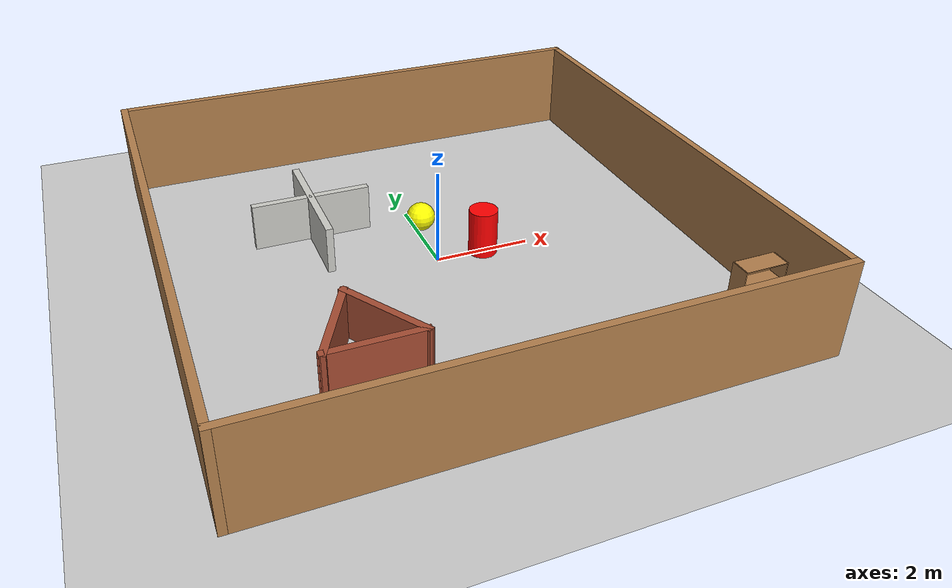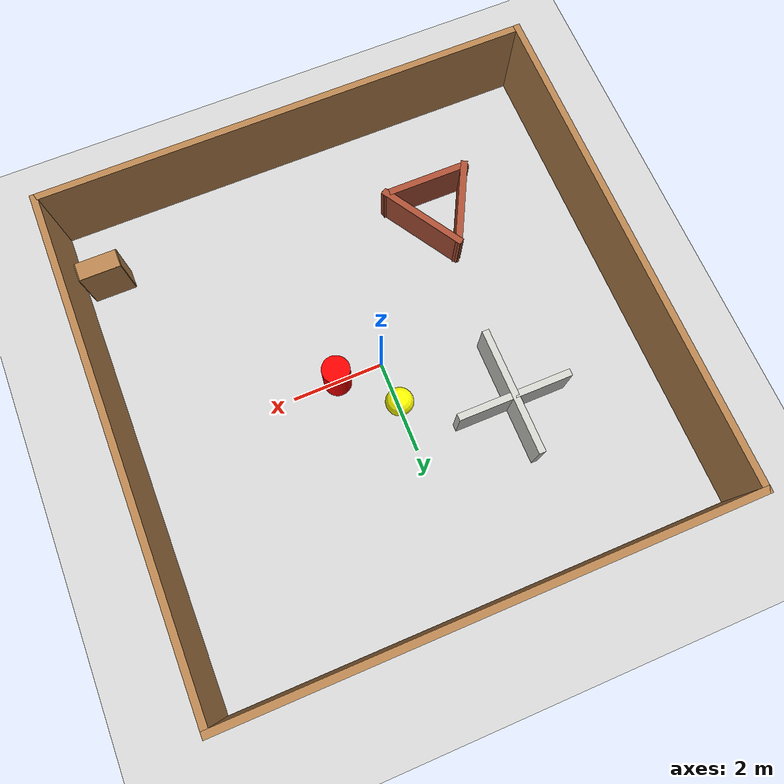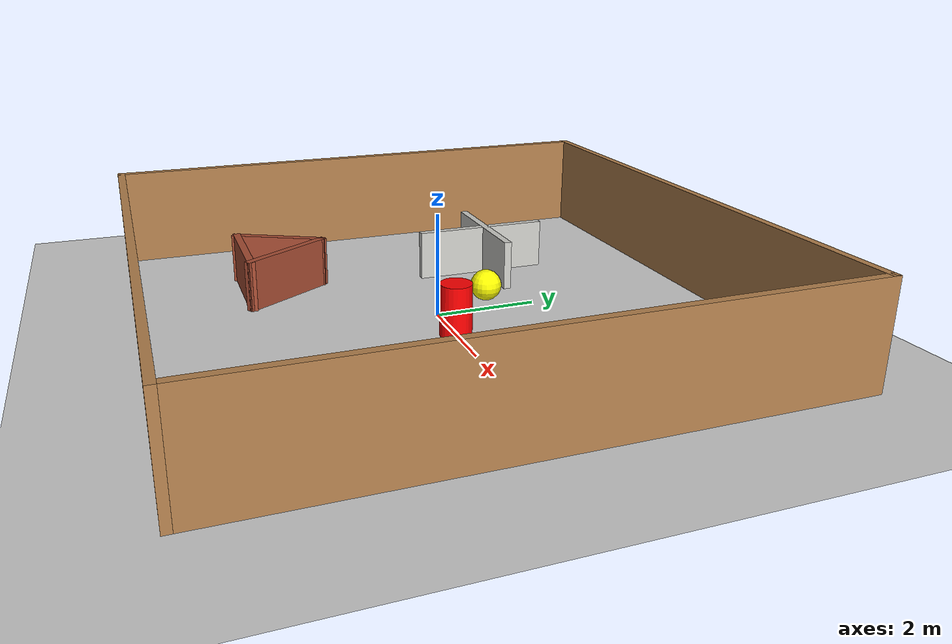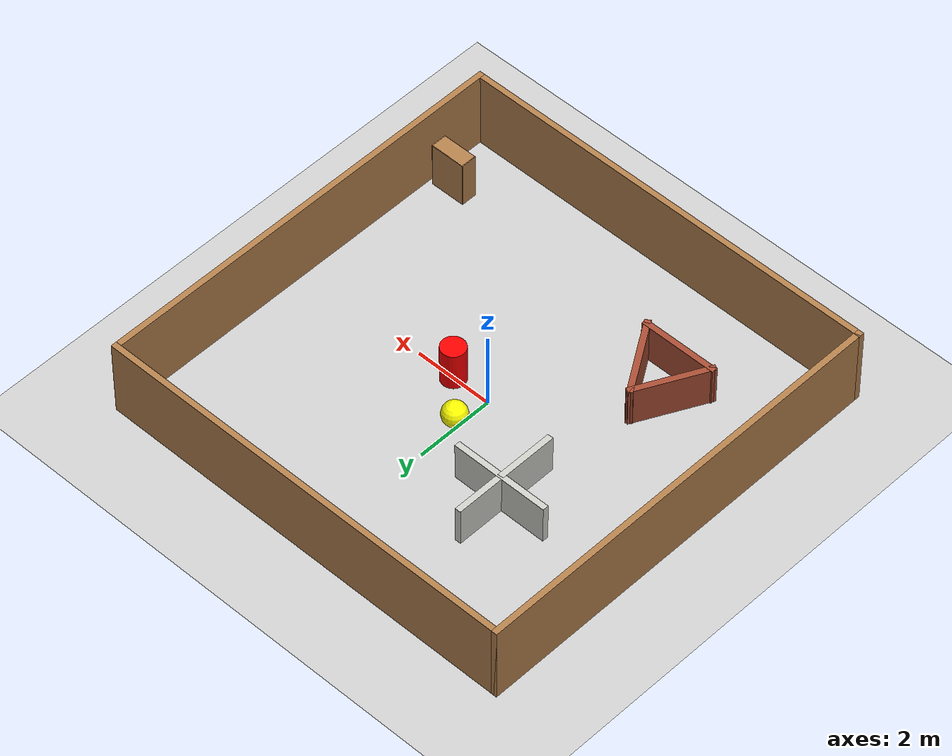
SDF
<sdf version="1.6">
 <world name="default">
  <model name="circular_obstacle">
   <pose>1 0 0.5 0 0 0</pose>
   <static>false</static>
   <link name="link">
    <collision name="collision">
     <geometry><cylinder><radius>0.3</radius><length>1.0</length></cylinder></geometry>
     <surface>
      <contact><ode><min_depth>0.001</min_depth><max_vel>0.1</max_vel><kp>1e5</kp><kd>1</kd></ode></contact>
      <friction><ode><mu>1.0</mu><mu2>1.0</mu2></ode></friction>
      <bounce><restitution_coefficient>0</restitution_coefficient><threshold>1e6</threshold></bounce>
     </surface>
    </collision>
    <visual name="visual">
     <geometry><cylinder><radius>0.3</radius><length>1.0</length></cylinder></geometry>
     <material><ambient>1 0 0 1</ambient><diffuse>1 0 0 1</diffuse></material>
    </visual>
    <inertial>
     <mass>5.0</mass>
     <inertia>
      <ixx>0.729166667</ixx>
      <ixy>0</ixy>
      <ixz>0</ixz>
      <iyy>0.729166667</iyy>
      <iyz>0</iyz>
      <izz>0.225</izz>
     </inertia>
    </inertial>
   </link>
   <plugin name="obstacle_motion" filename="libdynamic_obstacle_plugin.so"/>
  </model>
  <model name="eight_shaped_obstacle">
   <pose>0 1 0.5 0 0 0</pose>
   <static>false</static>
   <link name="link">
    <collision name="collision">
     <geometry><sphere><radius>0.3</radius></sphere></geometry>
     <surface>
      <contact><ode><min_depth>0.001</min_depth><max_vel>0.1</max_vel><kp>1e5</kp><kd>1</kd></ode></contact>
      <friction><ode><mu>1.0</mu><mu2>1.0</mu2></ode></friction>
      <bounce><restitution_coefficient>0</restitution_coefficient><threshold>1e6</threshold></bounce>
     </surface>
    </collision>
    <visual name="visual">
     <geometry><sphere><radius>0.3</radius></sphere></geometry>
     <material><ambient>1 1 0 1</ambient><diffuse>1 1 0 1</diffuse></material>
    </visual>
    <inertial>
     <mass>5.0</mass>
     <inertia><ixx>0.18</ixx><ixy>0</ixy><ixz>0</ixz><iyy>0.18</iyy><iyz>0</iyz><izz>0.18</izz></inertia>
    </inertial>
   </link>
   <plugin name="obstacle_motion" filename="libdynamic_obstacle_plugin.so"/>
  </model>
  <model name="ground_plane">
   <static>1</static>
   <link name="link">
    <collision name="collision">
     <geometry><plane><normal>0 0 1</normal><size>100 100</size></plane></geometry>
     <surface>
      <friction><ode><mu>100</mu><mu2>50</mu2></ode></friction>
      <contact><kp>1e6</kp><kd>100</kd></contact>
     </surface>
    </collision>
    <visual name="visual">
     <cast_shadows>0</cast_shadows>
     <geometry><plane><normal>0 0 1</normal><size>100 100</size></plane></geometry>
     <material>
      <script><uri>file://media/materials/scripts/gazebo.material</uri><name>Gazebo/Grey</name></script>
     </material>
    </visual>
   </link>
  </model>
  <model name="box">
   <link name="Wall_11">
    <pose>-2.152 1.857 0 0 -0 0</pose>
    <visual name="Wall_11_Visual">
     <pose>0 0 0.5 0 -0 0</pose>
     <geometry><box><size>2.5 0.15 1</size></box></geometry>
     <material>
      <script><uri>file://media/materials/scripts/gazebo.material</uri><name>Gazebo/CeilingTiled</name></script>
      <ambient>1 1 1 1</ambient>
      <diffuse>1 1 1 1</diffuse>
      <specular>0 0 0 1</specular>
      <emissive>0 0 0 1</emissive>
     </material>
     <meta><layer>0</layer></meta>
    </visual>
    <collision name="Wall_11_Collision">
     <pose>0 0 0.5 0 -0 0</pose>
     <geometry><box><size>2.5 0.15 1</size></box></geometry>
     <surface>
      <friction>
       <ode><mu>1</mu><mu2>1</mu2><fdir1>0 0 0</fdir1><slip1>0</slip1><slip2>0</slip2></ode>
       <torsional>
        <coefficient>1</coefficient>
        <patch_radius>0</patch_radius>
        <surface_radius>0</surface_radius>
        <use_patch_radius>1</use_patch_radius>
        <ode><slip>0</slip></ode>
       </torsional>
      </friction>
      <bounce><restitution_coefficient>0</restitution_coefficient><threshold>1e+06</threshold></bounce>
      <contact>
       <collide_without_contact>0</collide_without_contact>
       <collide_without_contact_bitmask>1</collide_without_contact_bitmask>
       <collide_bitmask>1</collide_bitmask>
       <ode>
        <soft_cfm>0</soft_cfm>
        <soft_erp>0.2</soft_erp>
        <kp>1e+13</kp>
        <kd>1</kd>
        <max_vel>0.01</max_vel>
        <min_depth>0</min_depth>
       </ode>
       <bullet>
        <split_impulse>1</split_impulse>
        <split_impulse_penetration_threshold>-0.01</split_impulse_penetration_threshold>
        <soft_cfm>0</soft_cfm>
        <soft_erp>0.2</soft_erp>
        <kp>1e+13</kp>
        <kd>1</kd>
       </bullet>
      </contact>
     </surface>
    </collision>
   </link>
   <link name="Wall_13">
    <pose>-2.155 1.764 0 0 0 -1.5708</pose>
    <visual name="Wall_13_Visual">
     <pose>0 0 0.5 0 -0 0</pose>
     <geometry><box><size>2.75 0.15 1</size></box></geometry>
     <material>
      <script><uri>file://media/materials/scripts/gazebo.material</uri><name>Gazebo/CeilingTiled</name></script>
      <ambient>1 1 1 1</ambient>
      <diffuse>1 1 1 1</diffuse>
      <specular>0 0 0 1</specular>
      <emissive>0 0 0 1</emissive>
     </material>
     <meta><layer>0</layer></meta>
    </visual>
    <collision name="Wall_13_Collision">
     <pose>0 0 0.5 0 -0 0</pose>
     <geometry><box><size>2.75 0.15 1</size></box></geometry>
     <surface>
      <friction>
       <ode><mu>1</mu><mu2>1</mu2><fdir1>0 0 0</fdir1><slip1>0</slip1><slip2>0</slip2></ode>
       <torsional>
        <coefficient>1</coefficient>
        <patch_radius>0</patch_radius>
        <surface_radius>0</surface_radius>
        <use_patch_radius>1</use_patch_radius>
        <ode><slip>0</slip></ode>
       </torsional>
      </friction>
      <bounce><restitution_coefficient>0</restitution_coefficient><threshold>1e+06</threshold></bounce>
      <contact>
       <collide_without_contact>0</collide_without_contact>
       <collide_without_contact_bitmask>1</collide_without_contact_bitmask>
       <collide_bitmask>1</collide_bitmask>
       <ode>
        <soft_cfm>0</soft_cfm>
        <soft_erp>0.2</soft_erp>
        <kp>1e+13</kp>
        <kd>1</kd>
        <max_vel>0.01</max_vel>
        <min_depth>0</min_depth>
       </ode>
       <bullet>
        <split_impulse>1</split_impulse>
        <split_impulse_penetration_threshold>-0.01</split_impulse_penetration_threshold>
        <soft_cfm>0</soft_cfm>
        <soft_erp>0.2</soft_erp>
        <kp>1e+13</kp>
        <kd>1</kd>
       </bullet>
      </contact>
     </surface>
    </collision>
   </link>
   <link name="Wall_24">
    <pose>-2.89576 -2.49088 0 0 -0 1.09459</pose>
    <visual name="Wall_24_Visual">
     <pose>0 0 0.5 0 -0 0</pose>
     <geometry><box><size>1.97704 0.15 1</size></box></geometry>
     <material>
      <script><uri>file://media/materials/scripts/gazebo.material</uri><name>Gazebo/Bricks</name></script>
      <ambient>1 1 1 1</ambient>
      <diffuse>1 1 1 1</diffuse>
      <specular>0.2 0.2 0.2 1</specular>
      <emissive>0 0 0 1</emissive>
     </material>
     <meta><layer>0</layer></meta>
    </visual>
    <collision name="Wall_24_Collision">
     <pose>0 0 0.5 0 -0 0</pose>
     <geometry><box><size>1.97704 0.15 1</size></box></geometry>
     <surface>
      <friction>
       <ode><mu>1</mu><mu2>1</mu2><fdir1>0 0 0</fdir1><slip1>0</slip1><slip2>0</slip2></ode>
       <torsional>
        <coefficient>1</coefficient>
        <patch_radius>0</patch_radius>
        <surface_radius>0</surface_radius>
        <use_patch_radius>1</use_patch_radius>
        <ode><slip>0</slip></ode>
       </torsional>
      </friction>
      <bounce><restitution_coefficient>0</restitution_coefficient><threshold>1e+06</threshold></bounce>
      <contact>
       <collide_without_contact>0</collide_without_contact>
       <collide_without_contact_bitmask>1</collide_without_contact_bitmask>
       <collide_bitmask>1</collide_bitmask>
       <ode>
        <soft_cfm>0</soft_cfm>
        <soft_erp>0.2</soft_erp>
        <kp>1e+13</kp>
        <kd>1</kd>
        <max_vel>0.01</max_vel>
        <min_depth>0</min_depth>
       </ode>
       <bullet>
        <split_impulse>1</split_impulse>
        <split_impulse_penetration_threshold>-0.01</split_impulse_penetration_threshold>
        <soft_cfm>0</soft_cfm>
        <soft_erp>0.2</soft_erp>
        <kp>1e+13</kp>
        <kd>1</kd>
       </bullet>
      </contact>
     </surface>
    </collision>
   </link>
   <link name="Wall_25">
    <pose>-1.97077 -2.49088 0 0 0 -1.01325</pose>
    <visual name="Wall_25_Visual">
     <pose>0 0 0.5 0 -0 0</pose>
     <geometry><box><size>2.06356 0.15 1</size></box></geometry>
     <material>
      <script><uri>file://media/materials/scripts/gazebo.material</uri><name>Gazebo/Bricks</name></script>
      <ambient>1 1 1 1</ambient>
      <diffuse>1 1 1 1</diffuse>
      <specular>0.2 0.2 0.2 1</specular>
      <emissive>0 0 0 1</emissive>
     </material>
     <meta><layer>0</layer></meta>
    </visual>
    <collision name="Wall_25_Collision">
     <pose>0 0 0.5 0 -0 0</pose>
     <geometry><box><size>2.06356 0.15 1</size></box></geometry>
     <surface>
      <friction>
       <ode><mu>1</mu><mu2>1</mu2><fdir1>0 0 0</fdir1><slip1>0</slip1><slip2>0</slip2></ode>
       <torsional>
        <coefficient>1</coefficient>
        <patch_radius>0</patch_radius>
        <surface_radius>0</surface_radius>
        <use_patch_radius>1</use_patch_radius>
        <ode><slip>0</slip></ode>
       </torsional>
      </friction>
      <bounce><restitution_coefficient>0</restitution_coefficient><threshold>1e+06</threshold></bounce>
      <contact>
       <collide_without_contact>0</collide_without_contact>
       <collide_without_contact_bitmask>1</collide_without_contact_bitmask>
       <collide_bitmask>1</collide_bitmask>
       <ode>
        <soft_cfm>0</soft_cfm>
        <soft_erp>0.2</soft_erp>
        <kp>1e+13</kp>
        <kd>1</kd>
        <max_vel>0.01</max_vel>
        <min_depth>0</min_depth>
       </ode>
       <bullet>
        <split_impulse>1</split_impulse>
        <split_impulse_penetration_threshold>-0.01</split_impulse_penetration_threshold>
        <soft_cfm>0</soft_cfm>
        <soft_erp>0.2</soft_erp>
        <kp>1e+13</kp>
        <kd>1</kd>
       </bullet>
      </contact>
     </surface>
    </collision>
   </link>
   <link name="Wall_26">
    <pose>-2.38953 -3.28527 0 0 -0 3.14159</pose>
    <visual name="Wall_26_Visual">
     <pose>0 0 0.5 0 -0 0</pose>
     <geometry><box><size>2 0.15 1</size></box></geometry>
     <material>
      <script><uri>file://media/materials/scripts/gazebo.material</uri><name>Gazebo/Bricks</name></script>
      <ambient>1 1 1 1</ambient>
      <diffuse>1 1 1 1</diffuse>
      <specular>0.2 0.2 0.2 1</specular>
      <emissive>0 0 0 1</emissive>
     </material>
     <meta><layer>0</layer></meta>
    </visual>
    <collision name="Wall_26_Collision">
     <pose>0 0 0.5 0 -0 0</pose>
     <geometry><box><size>2 0.15 1</size></box></geometry>
     <surface>
      <friction>
       <ode><mu>1</mu><mu2>1</mu2><fdir1>0 0 0</fdir1><slip1>0</slip1><slip2>0</slip2></ode>
       <torsional>
        <coefficient>1</coefficient>
        <patch_radius>0</patch_radius>
        <surface_radius>0</surface_radius>
        <use_patch_radius>1</use_patch_radius>
        <ode><slip>0</slip></ode>
       </torsional>
      </friction>
      <bounce><restitution_coefficient>0</restitution_coefficient><threshold>1e+06</threshold></bounce>
      <contact>
       <collide_without_contact>0</collide_without_contact>
       <collide_without_contact_bitmask>1</collide_without_contact_bitmask>
       <collide_bitmask>1</collide_bitmask>
       <ode>
        <soft_cfm>0</soft_cfm>
        <soft_erp>0.2</soft_erp>
        <kp>1e+13</kp>
        <kd>1</kd>
        <max_vel>0.01</max_vel>
        <min_depth>0</min_depth>
       </ode>
       <bullet>
        <split_impulse>1</split_impulse>
        <split_impulse_penetration_threshold>-0.01</split_impulse_penetration_threshold>
        <soft_cfm>0</soft_cfm>
        <soft_erp>0.2</soft_erp>
        <kp>1e+13</kp>
        <kd>1</kd>
       </bullet>
      </contact>
     </surface>
    </collision>
   </link>
   <link name="Wall_6">
    <pose>0 5.425 0 0 -0 0</pose>
    <visual name="Wall_6_Visual">
     <pose>0 0 1 0 -0 0</pose>
     <geometry><box><size>11 0.15 2</size></box></geometry>
     <material>
      <script><uri>file://media/materials/scripts/gazebo.material</uri><name>Gazebo/Wood</name></script>
      <ambient>1 1 1 1</ambient>
      <diffuse>1 1 1 1</diffuse>
      <specular>0.2 0.2 0.2 1</specular>
      <emissive>0 0 0 1</emissive>
     </material>
     <meta><layer>0</layer></meta>
    </visual>
    <collision name="Wall_6_Collision">
     <pose>0 0 1 0 -0 0</pose>
     <geometry><box><size>11 0.15 2</size></box></geometry>
     <surface>
      <friction>
       <ode><mu>1</mu><mu2>1</mu2><fdir1>0 0 0</fdir1><slip1>0</slip1><slip2>0</slip2></ode>
       <torsional>
        <coefficient>1</coefficient>
        <patch_radius>0</patch_radius>
        <surface_radius>0</surface_radius>
        <use_patch_radius>1</use_patch_radius>
        <ode><slip>0</slip></ode>
       </torsional>
      </friction>
      <bounce><restitution_coefficient>0</restitution_coefficient><threshold>1e+06</threshold></bounce>
      <contact>
       <collide_without_contact>0</collide_without_contact>
       <collide_without_contact_bitmask>1</collide_without_contact_bitmask>
       <collide_bitmask>1</collide_bitmask>
       <ode>
        <soft_cfm>0</soft_cfm>
        <soft_erp>0.2</soft_erp>
        <kp>1e+13</kp>
        <kd>1</kd>
        <max_vel>0.01</max_vel>
        <min_depth>0</min_depth>
       </ode>
       <bullet>
        <split_impulse>1</split_impulse>
        <split_impulse_penetration_threshold>-0.01</split_impulse_penetration_threshold>
        <soft_cfm>0</soft_cfm>
        <soft_erp>0.2</soft_erp>
        <kp>1e+13</kp>
        <kd>1</kd>
       </bullet>
      </contact>
     </surface>
    </collision>
   </link>
   <link name="Wall_7">
    <pose>5.425 0 0 0 0 -1.5708</pose>
    <visual name="Wall_7_Visual">
     <pose>0 0 1 0 -0 0</pose>
     <geometry><box><size>11 0.15 2</size></box></geometry>
     <material>
      <script><uri>file://media/materials/scripts/gazebo.material</uri><name>Gazebo/Wood</name></script>
      <ambient>1 1 1 1</ambient>
      <diffuse>1 1 1 1</diffuse>
      <specular>0.2 0.2 0.2 1</specular>
      <emissive>0 0 0 1</emissive>
     </material>
     <meta><layer>0</layer></meta>
    </visual>
    <collision name="Wall_7_Collision">
     <pose>0 0 1 0 -0 0</pose>
     <geometry><box><size>11 0.15 2</size></box></geometry>
     <surface>
      <friction>
       <ode><mu>1</mu><mu2>1</mu2><fdir1>0 0 0</fdir1><slip1>0</slip1><slip2>0</slip2></ode>
       <torsional>
        <coefficient>1</coefficient>
        <patch_radius>0</patch_radius>
        <surface_radius>0</surface_radius>
        <use_patch_radius>1</use_patch_radius>
        <ode><slip>0</slip></ode>
       </torsional>
      </friction>
      <bounce><restitution_coefficient>0</restitution_coefficient><threshold>1e+06</threshold></bounce>
      <contact>
       <collide_without_contact>0</collide_without_contact>
       <collide_without_contact_bitmask>1</collide_without_contact_bitmask>
       <collide_bitmask>1</collide_bitmask>
       <ode>
        <soft_cfm>0</soft_cfm>
        <soft_erp>0.2</soft_erp>
        <kp>1e+13</kp>
        <kd>1</kd>
        <max_vel>0.01</max_vel>
        <min_depth>0</min_depth>
       </ode>
       <bullet>
        <split_impulse>1</split_impulse>
        <split_impulse_penetration_threshold>-0.01</split_impulse_penetration_threshold>
        <soft_cfm>0</soft_cfm>
        <soft_erp>0.2</soft_erp>
        <kp>1e+13</kp>
        <kd>1</kd>
       </bullet>
      </contact>
     </surface>
    </collision>
   </link>
   <link name="Wall_8">
    <pose>0 -5.425 0 0 -0 3.14159</pose>
    <visual name="Wall_8_Visual">
     <pose>0 0 1 0 -0 0</pose>
     <geometry><box><size>11 0.15 2</size></box></geometry>
     <material>
      <script><uri>file://media/materials/scripts/gazebo.material</uri><name>Gazebo/Wood</name></script>
      <ambient>1 1 1 1</ambient>
      <diffuse>1 1 1 1</diffuse>
      <specular>0.2 0.2 0.2 1</specular>
      <emissive>0 0 0 1</emissive>
     </material>
     <meta><layer>0</layer></meta>
    </visual>
    <collision name="Wall_8_Collision">
     <pose>0 0 1 0 -0 0</pose>
     <geometry><box><size>11 0.15 2</size></box></geometry>
     <surface>
      <friction>
       <ode><mu>1</mu><mu2>1</mu2><fdir1>0 0 0</fdir1><slip1>0</slip1><slip2>0</slip2></ode>
       <torsional>
        <coefficient>1</coefficient>
        <patch_radius>0</patch_radius>
        <surface_radius>0</surface_radius>
        <use_patch_radius>1</use_patch_radius>
        <ode><slip>0</slip></ode>
       </torsional>
      </friction>
      <bounce><restitution_coefficient>0</restitution_coefficient><threshold>1e+06</threshold></bounce>
      <contact>
       <collide_without_contact>0</collide_without_contact>
       <collide_without_contact_bitmask>1</collide_without_contact_bitmask>
       <collide_bitmask>1</collide_bitmask>
       <ode>
        <soft_cfm>0</soft_cfm>
        <soft_erp>0.2</soft_erp>
        <kp>1e+13</kp>
        <kd>1</kd>
        <max_vel>0.01</max_vel>
        <min_depth>0</min_depth>
       </ode>
       <bullet>
        <split_impulse>1</split_impulse>
        <split_impulse_penetration_threshold>-0.01</split_impulse_penetration_threshold>
        <soft_cfm>0</soft_cfm>
        <soft_erp>0.2</soft_erp>
        <kp>1e+13</kp>
        <kd>1</kd>
       </bullet>
      </contact>
     </surface>
    </collision>
   </link>
   <link name="Wall_9">
    <pose>-5.425 0 0 0 -0 1.5708</pose>
    <visual name="Wall_9_Visual">
     <pose>0 0 1 0 -0 0</pose>
     <geometry><box><size>11 0.15 2</size></box></geometry>
     <material>
      <script><uri>file://media/materials/scripts/gazebo.material</uri><name>Gazebo/Wood</name></script>
      <ambient>1 1 1 1</ambient>
      <diffuse>1 1 1 1</diffuse>
      <specular>0.2 0.2 0.2 1</specular>
      <emissive>0 0 0 1</emissive>
     </material>
     <meta><layer>0</layer></meta>
    </visual>
    <collision name="Wall_9_Collision">
     <pose>0 0 1 0 -0 0</pose>
     <geometry><box><size>11 0.15 2</size></box></geometry>
     <surface>
      <friction>
       <ode><mu>1</mu><mu2>1</mu2><fdir1>0 0 0</fdir1><slip1>0</slip1><slip2>0</slip2></ode>
       <torsional>
        <coefficient>1</coefficient>
        <patch_radius>0</patch_radius>
        <surface_radius>0</surface_radius>
        <use_patch_radius>1</use_patch_radius>
        <ode><slip>0</slip></ode>
       </torsional>
      </friction>
      <bounce><restitution_coefficient>0</restitution_coefficient><threshold>1e+06</threshold></bounce>
      <contact>
       <collide_without_contact>0</collide_without_contact>
       <collide_without_contact_bitmask>1</collide_without_contact_bitmask>
       <collide_bitmask>1</collide_bitmask>
       <ode>
        <soft_cfm>0</soft_cfm>
        <soft_erp>0.2</soft_erp>
        <kp>1e+13</kp>
        <kd>1</kd>
        <max_vel>0.01</max_vel>
        <min_depth>0</min_depth>
       </ode>
       <bullet>
        <split_impulse>1</split_impulse>
        <split_impulse_penetration_threshold>-0.01</split_impulse_penetration_threshold>
        <soft_cfm>0</soft_cfm>
        <soft_erp>0.2</soft_erp>
        <kp>1e+13</kp>
        <kd>1</kd>
       </bullet>
      </contact>
     </surface>
    </collision>
   </link>
   <static>1</static>
   <pose>0.000564 -0.000118 0 0 -0 0</pose>
  </model>
  <model name="bookshelf">
   <static>1</static>
   <link name="link">
    <inertial><mass>1</mass></inertial>
    <collision name="back">
     <pose>0 0.005 0.6 0 -0 0</pose>
     <geometry><box><size>0.9 0.01 1.2</size></box></geometry>
    </collision>
    <visual name="visual1">
     <pose>0 0.005 0.6 0 -0 0</pose>
     <geometry><box><size>0.9 0.01 1.2</size></box></geometry>
     <material>
      <script><uri>file://media/materials/scripts/gazebo.material</uri><name>Gazebo/Wood</name></script>
     </material>
    </visual>
    <collision name="left_side">
     <pose>0.45 -0.195 0.6 0 -0 0</pose>
     <geometry><box><size>0.02 0.4 1.2</size></box></geometry>
    </collision>
    <visual name="visual2">
     <pose>0.45 -0.195 0.6 0 -0 0</pose>
     <geometry><box><size>0.02 0.4 1.2</size></box></geometry>
     <material>
      <script><uri>file://media/materials/scripts/gazebo.material</uri><name>Gazebo/Wood</name></script>
     </material>
    </visual>
    <collision name="right_side">
     <pose>-0.45 -0.195 0.6 0 -0 0</pose>
     <geometry><box><size>0.02 0.4 1.2</size></box></geometry>
    </collision>
    <visual name="visual3">
     <pose>-0.45 -0.195 0.6 0 -0 0</pose>
     <geometry><box><size>0.02 0.4 1.2</size></box></geometry>
     <material>
      <script><uri>file://media/materials/scripts/gazebo.material</uri><name>Gazebo/Wood</name></script>
     </material>
    </visual>
    <collision name="bottom">
     <pose>0 -0.195 0.03 0 -0 0</pose>
     <geometry><box><size>0.88 0.4 0.06</size></box></geometry>
    </collision>
    <visual name="visual4">
     <pose>0 -0.195 0.03 0 -0 0</pose>
     <geometry><box><size>0.88 0.4 0.06</size></box></geometry>
     <material>
      <script><uri>file://media/materials/scripts/gazebo.material</uri><name>Gazebo/Wood</name></script>
     </material>
    </visual>
    <collision name="top">
     <pose>0 -0.195 1.19 0 -0 0</pose>
     <geometry><box><size>0.88 0.4 0.02</size></box></geometry>
    </collision>
    <visual name="visual5">
     <pose>0 -0.195 1.19 0 -0 0</pose>
     <geometry><box><size>0.88 0.4 0.02</size></box></geometry>
     <material>
      <script><uri>file://media/materials/scripts/gazebo.material</uri><name>Gazebo/Wood</name></script>
     </material>
    </visual>
    <collision name="low_shelf">
     <pose>0 -0.195 0.43 0 -0 0</pose>
     <geometry><box><size>0.88 0.4 0.02</size></box></geometry>
    </collision>
    <visual name="visual6">
     <pose>0 -0.195 0.43 0 -0 0</pose>
     <geometry><box><size>0.88 0.4 0.02</size></box></geometry>
     <material>
      <script><uri>file://media/materials/scripts/gazebo.material</uri><name>Gazebo/Wood</name></script>
     </material>
    </visual>
    <collision name="high_shelf">
     <pose>0 -0.195 0.8 0 -0 0</pose>
     <geometry><box><size>0.88 0.4 0.02</size></box></geometry>
    </collision>
    <visual name="visual7">
     <pose>0 -0.195 0.8 0 -0 0</pose>
     <geometry><box><size>0.88 0.4 0.02</size></box></geometry>
     <material>
      <script><uri>file://media/materials/scripts/gazebo.material</uri><name>Gazebo/Wood</name></script>
     </material>
    </visual>
   </link>
   <pose>4.78412 -3.73836 0 0 -0 0</pose>
  </model>
 </world>
</sdf>
